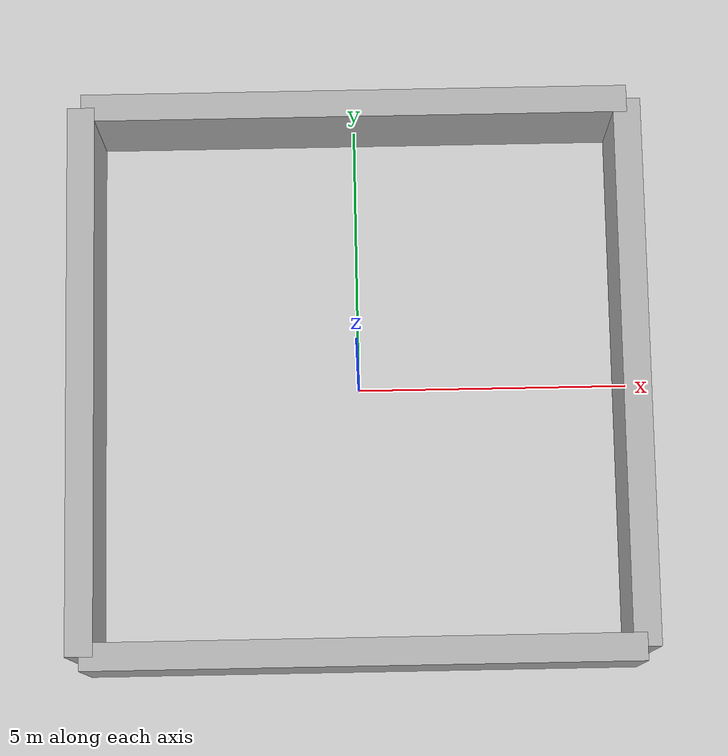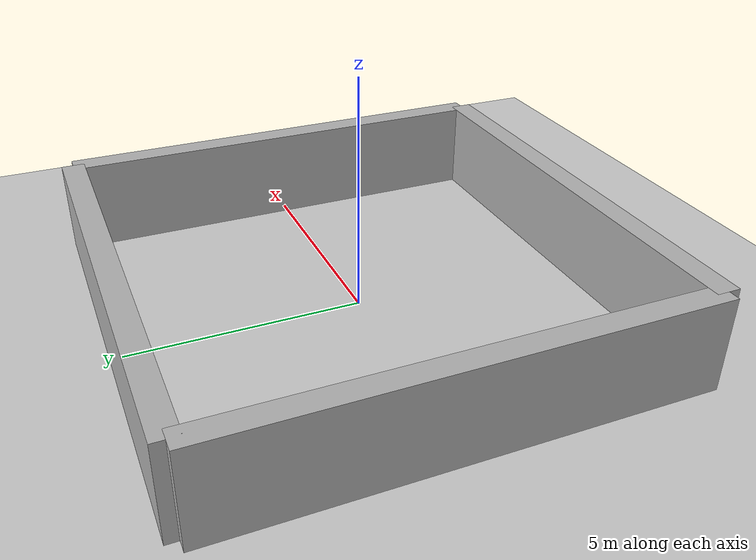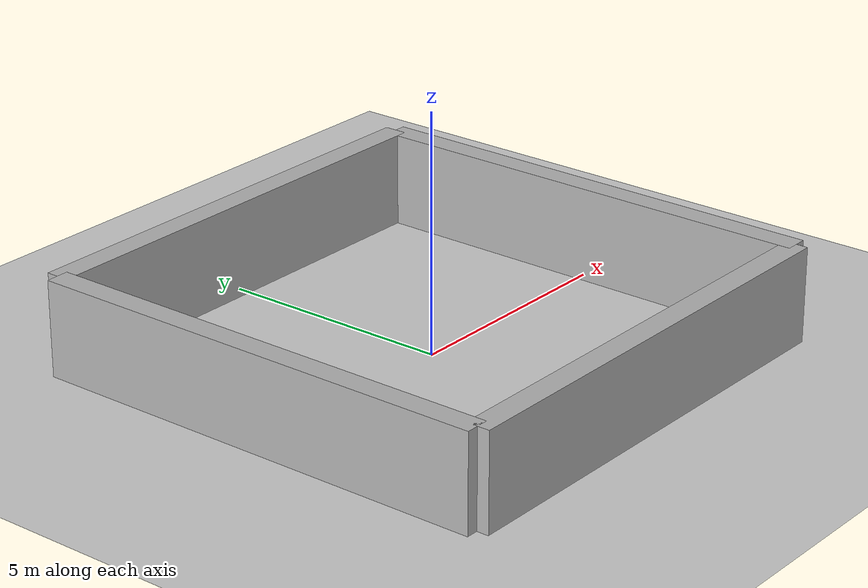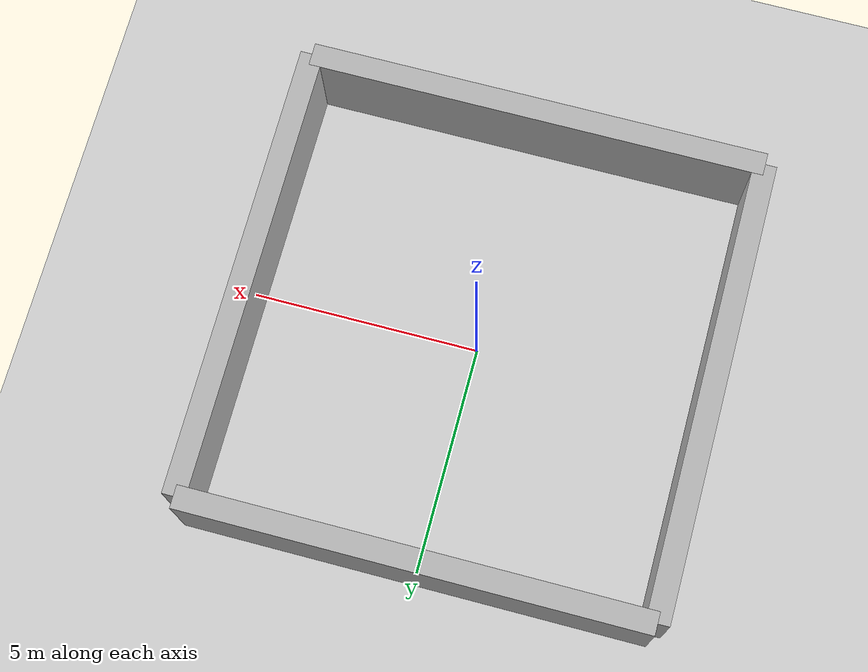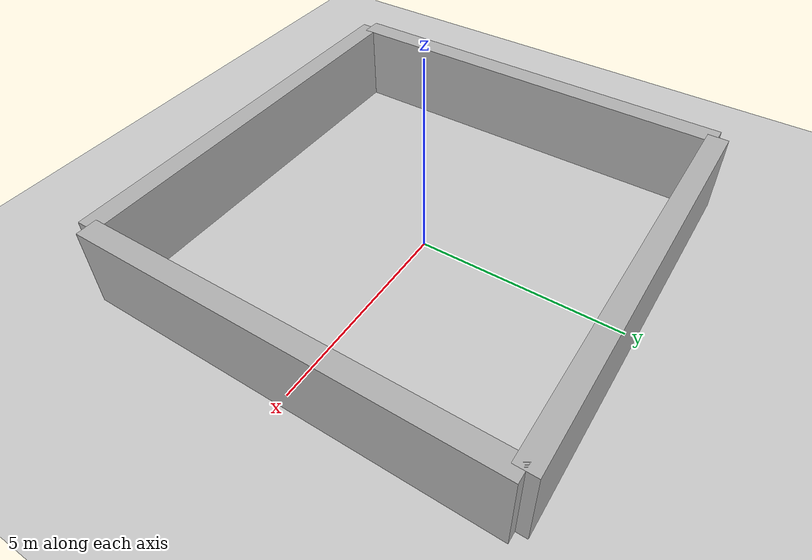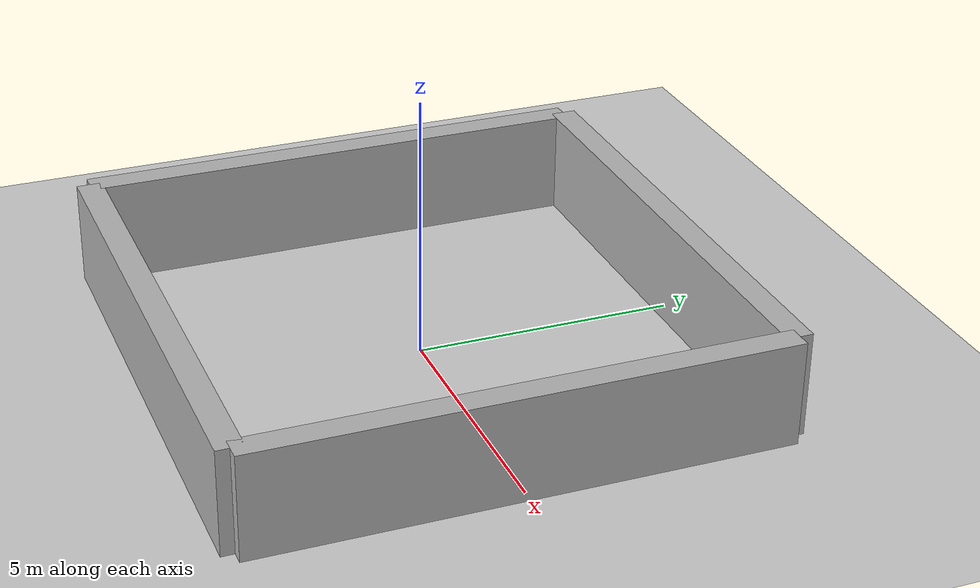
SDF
<sdf version="1.6">
 <world name="dynamic_test_world">
  <physics name="1ms" type="ignored">
   <max_step_size>0.001</max_step_size>
   <real_time_factor>1.0</real_time_factor>
  </physics>
  <plugin filename="libignition-gazebo-physics-system.so" name="ignition::gazebo::systems::Physics"/>
  <plugin filename="libignition-gazebo-user-commands-system.so" name="ignition::gazebo::systems::UserCommands"/>
  <plugin filename="libignition-gazebo-scene-broadcaster-system.so" name="ignition::gazebo::systems::SceneBroadcaster"/>
  <plugin filename="libignition-gazebo-sensors-system.so" name="ignition::gazebo::systems::Sensors">
   <render_engine>ogre2</render_engine>
  </plugin>
  <include><uri>https://fuel.gazebosim.org/1.0/OpenRobotics/models/Sun</uri></include>
  <include><uri>https://fuel.gazebosim.org/1.0/OpenRobotics/models/Ground Plane</uri></include>
  <model name="wall_1">
   <static>true</static>
   <pose>5 0 1 0 0 0</pose>
   <link name="link">
    <collision name="collision"><geometry><box><size>0.5 10 2</size></box></geometry></collision>
    <visual name="visual">
     <geometry><box><size>0.5 10 2</size></box></geometry>
     <material><ambient>0.7 0.7 0.7 1</ambient></material>
    </visual>
   </link>
  </model>
  <model name="wall_2">
   <static>true</static>
   <pose>-5 0 1 0 0 0</pose>
   <link name="link">
    <collision name="collision"><geometry><box><size>0.5 10 2</size></box></geometry></collision>
    <visual name="visual">
     <geometry><box><size>0.5 10 2</size></box></geometry>
     <material><ambient>0.7 0.7 0.7 1</ambient></material>
    </visual>
   </link>
  </model>
  <model name="wall_3">
   <static>true</static>
   <pose>0 5 1 0 0 0</pose>
   <link name="link">
    <collision name="collision"><geometry><box><size>10 0.5 2</size></box></geometry></collision>
    <visual name="visual">
     <geometry><box><size>10 0.5 2</size></box></geometry>
     <material><ambient>0.7 0.7 0.7 1</ambient></material>
    </visual>
   </link>
  </model>
  <model name="wall_4">
   <static>true</static>
   <pose>0 -5 1 0 0 0</pose>
   <link name="link">
    <collision name="collision"><geometry><box><size>10 0.5 2</size></box></geometry></collision>
    <visual name="visual">
     <geometry><box><size>10 0.5 2</size></box></geometry>
     <material><ambient>0.7 0.7 0.7 1</ambient></material>
    </visual>
   </link>
  </model>
 </world>
</sdf>
